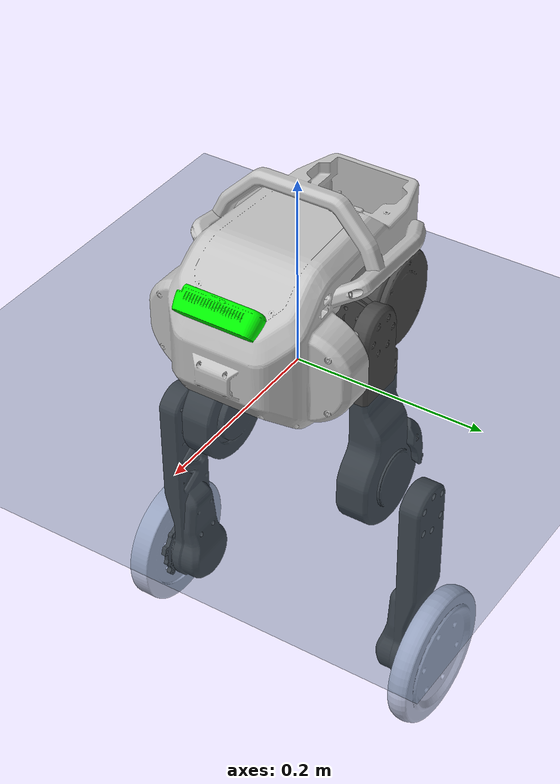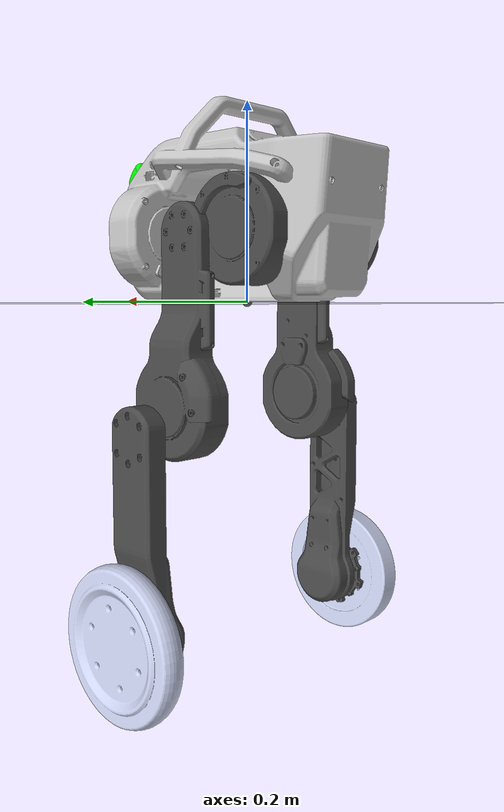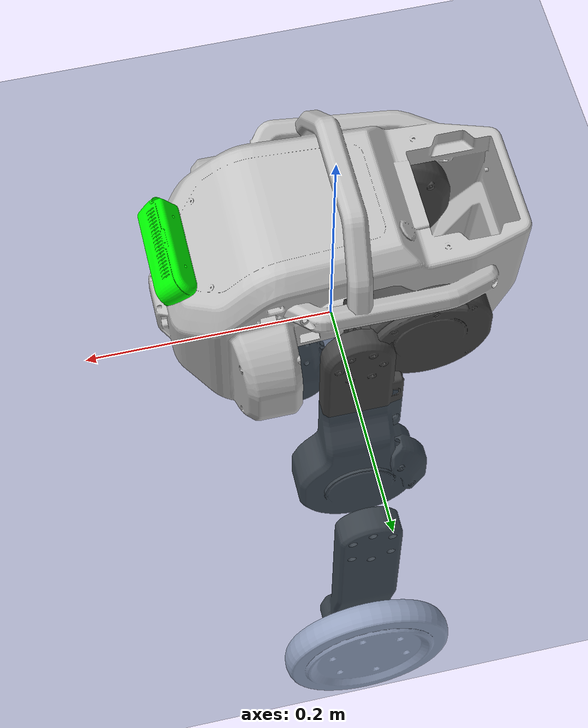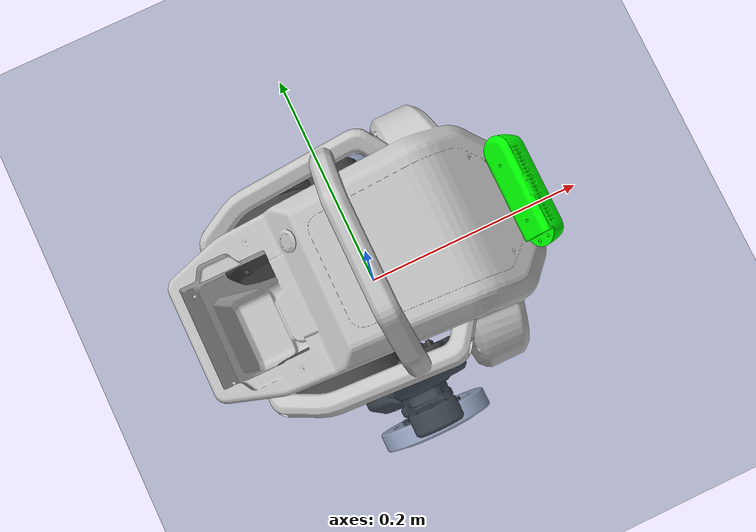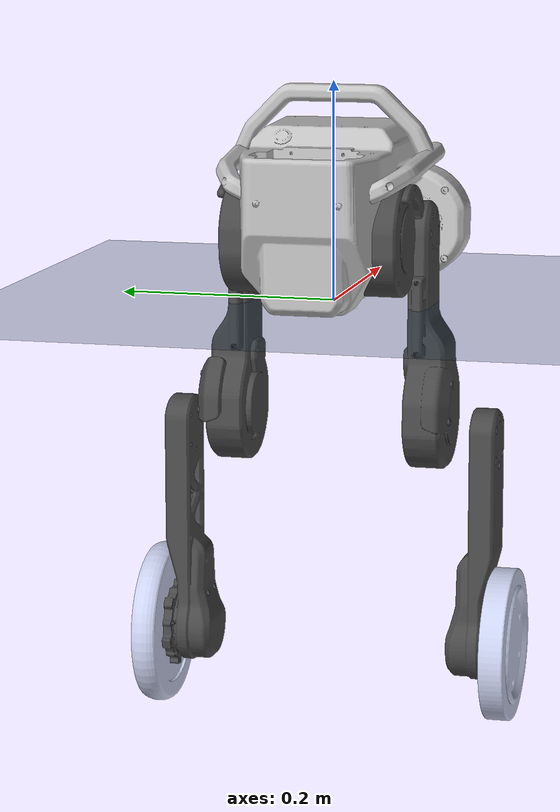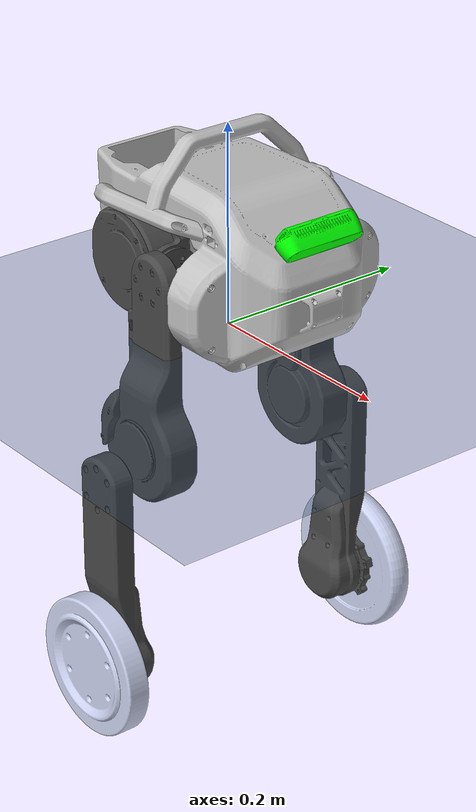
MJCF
<mujoco model="Pinapple scene">
  <include file="pineapple_8dof.xml"/>

  <statistic center="0 0 0.1" extent="0.8"/>

  <visual>
    <headlight diffuse="0.6 0.6 0.6" ambient="0.3 0.3 0.3" specular="0 0 0"/>
    <rgba haze="0.15 0.25 0.35 1"/>
    <global azimuth="-130" elevation="-20"/>
  </visual>

  <asset>
    <texture type="skybox" builtin="gradient" rgb1="0.3 0.5 0.7" rgb2="0 0 0" width="512" height="3072"/>
    <texture type="2d" name="groundplane" builtin="checker" mark="edge" rgb1="0.2 0.3 0.4" rgb2="0.1 0.2 0.3"
      markrgb="0.8 0.8 0.8" width="300" height="300"/>
    <material name="groundplane" texture="groundplane" texuniform="true" texrepeat="5 5" reflectance="0.2"/>
  </asset>

  <worldbody>
    <light pos="0 0 1.5" dir="0 0 -1" directional="true"/>
    <geom name="floor" size="0 0 0.05" type="plane" material="groundplane"/>

  </worldbody>
</mujoco>

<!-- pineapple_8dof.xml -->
<mujoco model="pineapple">
  <compiler angle="radian" meshdir="../v1/meshes/"/>
  <option cone="elliptic" impratio="100"/>
  <option gravity='0 0 -9.81' iterations='50' solver='Newton' timestep='0.002'/>

  <default>
      <default class="pinapple">
          <joint damping="0.1" armature="0.01" frictionloss="0.2"/>
          <motor ctrlrange="-23.7 23.7"/>
          <default class="l_hip">
              <joint axis="1 0 0" range="-0.52358 0.17444"/>
              <motor ctrlrange="-23.7 23.7"/>
          </default>
          <default class="r_hip">
              <joint axis="1 0 0" range="-0.17444 0.52358"/>
              <motor ctrlrange="-23.7 23.7"/>
          </default>
          <default class="thigh">
              <joint axis="0 1 0" range="0 1.57"/>
              <motor ctrlrange="-23.7 23.7"/>
          </default>
          <default class="calf">
              <joint axis="0 1 0" range="-3.141 0"/>
              <motor ctrlrange="-33.5 33.5"/>
          </default>
          <default class="visual">
              <geom type="mesh" contype="0" conaffinity="0" group="2"/>
          </default>
          <default class="collision">
              <geom group="3" type="mesh" rgba="1 0 0 0.3" />
              <default class="wheel">
              <geom size="0.022" priority="1" condim="6"
                  friction="0.8 0.02 0.01"/>
              </default>
          </default>
      </default>
  </default>

  <asset>
    <mesh name="base_link" file="base_link.STL"/>
    <mesh name="base_collision" file="base_collision.STL"/>
    <mesh name="cam" file="cam.STL"/>
    <mesh name="L_hip" file="L_hip.STL"/>
    <mesh name="L_thigh" file="L_thigh.STL"/>
    <mesh name="L_thigh_collision" file="L_thigh_collision.STL"/>
    <mesh name="L_calf" file="L_calf.STL"/>
    <mesh name="L_calf_collision" file="L_calf_collision.STL"/>
    <mesh name="L_wheel" file="L_wheel.STL"/>
    <mesh name="R_hip" file="R_hip.STL"/>
    <mesh name="R_thigh" file="R_thigh.STL"/>
    <mesh name="R_thigh_collision" file="R_thigh_collision.STL"/>
    <mesh name="R_calf" file="R_calf.STL"/>
    <mesh name="R_calf_collision" file="R_calf_collision.STL"/>
    <mesh name="R_wheel" file="R_wheel.STL"/>
  </asset>

  <worldbody>
    <body name="base_link" pos="0 0 0" childclass="pinapple">
      <inertial pos="-0.01551464 0.00128628 0.04323478" quat="1 0 0 0" mass="3.64" diaginertia="0.01979765 0.01183585 0.00863159" />
      <freejoint />
      <site name="imu" pos="0 0 0" />
      <geom type="mesh" contype="0" conaffinity="0" group="1" density="0" rgba="0.752941 0.752941 0.752941 1" mesh="base_link"/>
      <body name="cam" pos="0 0 0">
        <inertial pos="0 0 0" quat="1 0 0 0" mass="0.3" diaginertia="0.00002720 0.00018085 0.00018280" />
        <geom pos="0.136663 0 0.12554" quat="0.939693 0 0.34202 0" type="mesh" contype="0" conaffinity="0" group="1" density="0" rgba="0 1 0 1" mesh="cam"/>
      </body>
      <body name="L_hip" pos="0 0.06125 0.066">
        <inertial pos="0.00220657 -0.00275734 0" quat="0.495165 0.500327 0.50504 0.49942" mass="0.573" diaginertia="0.000929348 0.000666519 0.000585923"/>
        <joint name="L_hip_joint" class="l_hip"/>
        <geom type="mesh" contype="0" conaffinity="0" group="1" density="0" rgba="0.278431 0.278431 0.278431 1" mesh="L_hip"/>
        <body name="L_thigh" pos="0 0.0129353 0">
          <inertial pos="-3.518e-05 0.024423 -0.117737" quat="0.70702 0.0235272 -0.0231082 0.706424" mass="0.75" diaginertia="0.00563942 0.00538265 0.000562439"/>
          <joint name="L_thigh_joint" class="thigh"/>
          <geom type="mesh" contype="0" conaffinity="0" group="1" density="0" rgba="0.278431 0.278431 0.278431 1" mesh="L_thigh"/>
          <body name="L_calf" pos="0 0.0359318 -0.19">
            <inertial pos="-6.785e-05 0.0320155 -0.120892" quat="0.705593 -0.00112966 0.000810906 0.708616" mass="0.5" diaginertia="0.00347557 0.00341614 0.000198605"/>
            <joint name="L_calf_joint" class="calf"/>
            <geom type="mesh" contype="0" conaffinity="0" group="1" density="0" rgba="0.278431 0.278431 0.278431 1" mesh="L_calf"/>
            <body name="L_wheel" pos="0 0.0421818 -0.19">
              <inertial pos="0 0.0125028 0" quat="0.649816 0.278644 0.278825 0.649888" mass="0.305" diaginertia="0.00105426 0.000539875 0.000539675"/>
              <joint name="L_wheel_joint" pos="0 0 0" axis="0 1 0" actuatorfrcrange="-3.69 3.69"/>
              <geom type="mesh" contype="0" conaffinity="0" group="1" density="0" rgba="0.792157 0.819608 0.933333 1" mesh="L_wheel"/>
              <geom size="0.075 0.013" pos="0 0.013 0" quat="0.707105 0.707108 0 0" type="cylinder" rgba="0.792157 0.819608 0.933333 1" class='wheel'/>
            </body>
          </body>
        </body>
      </body>
      <body name="R_hip" pos="0 -0.06125 0.066">
        <inertial pos="0.00220657 0.00275734 0" quat="0.499604 0.504856 0.500523 0.494968" mass="0.573" diaginertia="0.000929348 0.000666519 0.000585923"/>
        <joint name="R_hip_joint" class="r_hip"/>
        <geom type="mesh" contype="0" conaffinity="0" group="1" density="0" rgba="0.278431 0.278431 0.278431 1" mesh="R_hip"/>
        <body name="R_thigh" pos="0 -0.0129353 0">
          <inertial pos="-3.518e-05 -0.024423 -0.117737" quat="0.706424 -0.0231082 0.0235272 0.70702" mass="0.75" diaginertia="0.00563942 0.00538265 0.000562439"/>
          <joint name="R_thigh_joint" class="thigh"/>
          <geom type="mesh" contype="0" conaffinity="0" group="1" density="0" rgba="0.278431 0.278431 0.278431 1" mesh="R_thigh"/>
          <body name="R_calf" pos="0 -0.0359318 -0.19">
            <inertial pos="-6.785e-05 -0.0320155 -0.120892" quat="0.708616 0.000810906 -0.00112966 0.705593" mass="0.5" diaginertia="0.00347557 0.00341614 0.000198605"/>
            <joint name="R_calf_joint" class="calf"/>
            <geom type="mesh" contype="0" conaffinity="0" group="1" density="0" rgba="0.278431 0.278431 0.278431 1" mesh="R_calf"/>
            <body name="R_wheel" pos="0 -0.0421818 -0.19">
              <inertial pos="0 -0.0125028 0" quat="0.649816 0.278644 0.278825 0.649888" mass="0.305" diaginertia="0.00105426 0.000539875 0.000539675"/>
              <joint name="R_wheel_joint" pos="0 0 0" axis="0 1 0" actuatorfrcrange="-3.69 3.69"/>
              <geom type="mesh" contype="0" conaffinity="0" group="1" density="0" rgba="0.792157 0.819608 0.933333 1" mesh="R_wheel"/>
              <geom size="0.075 0.013" pos="0 -0.013 0" quat="0.707105 0.707108 0 0" type="cylinder" rgba="0.792157 0.819608 0.933333 1" class='wheel'/>
            </body>
          </body>
        </body>
      </body>
    </body>
  </worldbody>
  <actuator>
      <motor class="l_hip" name="L_hip" joint="L_hip_joint" />
      <motor class="thigh" name="L_thigh" joint="L_thigh_joint" />
      <motor class="calf" name="L_calf" joint="L_calf_joint" />
      <motor ctrlrange="-3.69 3.69" name="L_wheel" joint="L_wheel_joint" />

      <motor class="r_hip" name="R_hip" joint="R_hip_joint" />
      <motor class="thigh" name="R_thigh" joint="R_thigh_joint" />
      <motor class="calf" name="R_calf" joint="R_calf_joint" />
      <motor ctrlrange="-3.69 3.69" name="R_wheel" joint="R_wheel_joint" />

  </actuator>

  <sensor>

      <jointpos name="L_hip_pos" joint="L_hip_joint" />
      <jointpos name="L_thigh_pos" joint="L_thigh_joint" />
      <jointpos name="L_calf_pos" joint="L_calf_joint" />
      <jointpos name="L_wheel_pos" joint="L_wheel_joint" />

      <jointpos name="R_hip_pos" joint="R_hip_joint" />
      <jointpos name="R_thigh_pos" joint="R_thigh_joint" />
      <jointpos name="R_calf_pos" joint="R_calf_joint" />
      <jointpos name="R_wheel_pos" joint="R_wheel_joint" />

      <jointvel name="L_hip_vel" joint="L_hip_joint" />
      <jointvel name="L_thigh_vel" joint="L_thigh_joint" />
      <jointvel name="L_calf_vel" joint="L_calf_joint" />
      <jointvel name="L_wheel_vel" joint="L_wheel_joint" noise="0.0"/>

      <jointvel name="R_hip_vel" joint="R_hip_joint" />
      <jointvel name="R_thigh_vel" joint="R_thigh_joint" />
      <jointvel name="R_calf_vel" joint="R_calf_joint" />
      <jointvel name="R_wheel_vel" joint="R_wheel_joint" noise="0.0"/>

      <jointactuatorfrc name="L_hip_torque" joint="L_hip_joint" noise="0.01" />
      <jointactuatorfrc name="L_thigh_torque" joint="L_thigh_joint" noise="0.01" />
      <jointactuatorfrc name="L_calf_torque" joint="L_calf_joint" noise="0.01" />
      <jointactuatorfrc name="L_wheel_torque" joint="L_wheel_joint" />

      <jointactuatorfrc name="R_hip_torque" joint="R_hip_joint" noise="0.01" />
      <jointactuatorfrc name="R_thigh_torque" joint="R_thigh_joint" noise="0.01" />
      <jointactuatorfrc name="R_calf_torque" joint="R_calf_joint" noise="0.01" />
      <jointactuatorfrc name="R_wheel_torque" joint="R_wheel_joint" />

      <framequat name="imu_quat" objtype="site" objname="imu" noise="0.0"/>
      <gyro name="imu_gyro" site="imu" noise="0.0"/>
      <accelerometer name="imu_acc" site="imu" />

      <framepos name="frame_pos" objtype="site" objname="imu" />
      <framelinvel name="frame_lin_vel" objtype="site" objname="imu" />
      <frameangvel name="frame_ang_vel" objtype="site" objname="imu" />
  </sensor>
</mujoco>
